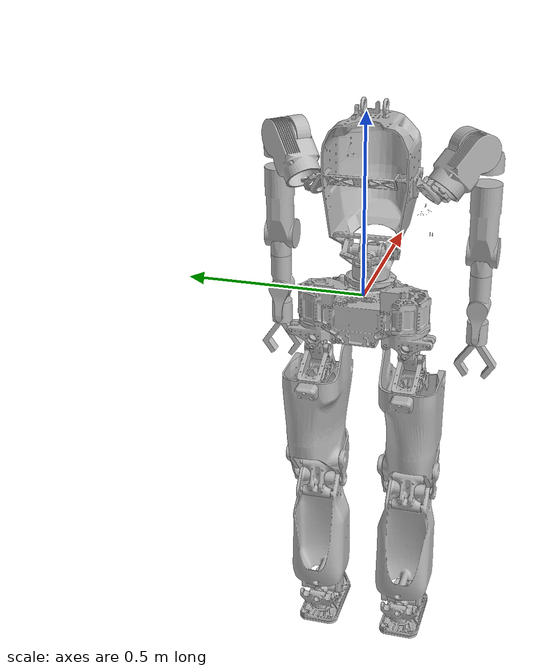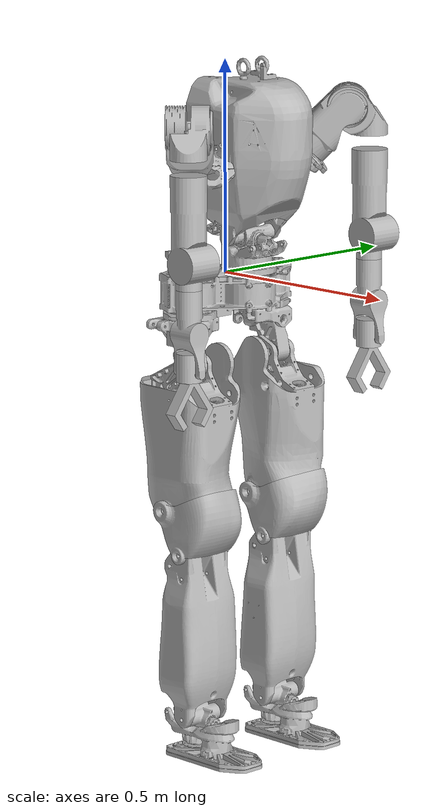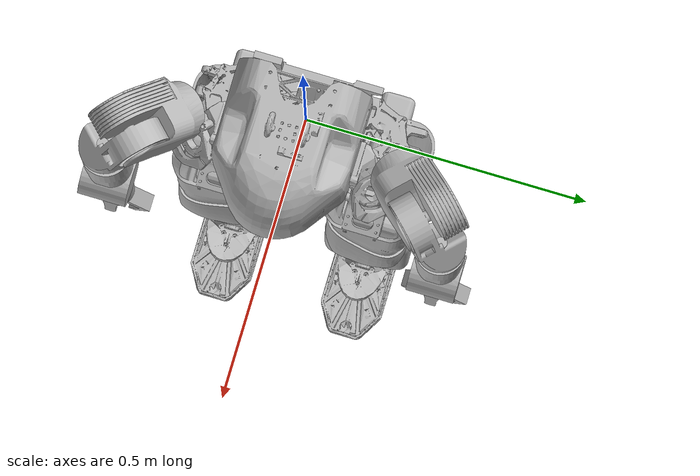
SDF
<sdf version='1.4'>
  <model name='nadia'>
    <link name='PELVIS_LINK'>
      <pose>0 0 0 0 -0 0</pose>
      <inertial>
        <pose>0.0207309 2.023e-05 -0.0309812 0 -0 0</pose>
        <mass>19.0917</mass>
        <inertia>
          <ixx>0.0942</ixx>
          <ixy>6.05e-06</ixy>
          <ixz>0.000379</ixz>
          <iyy>0.0416</iyy>
          <iyz>3.37e-07</iyz>
          <izz>0.112</izz>
        </inertia>
      </inertial>
	  <sensor name="pelvis_orientus_imu" type="imu">
      <pose>-0.00960080 -0.0000010 -0.07599977 0 0 3.141592</pose>
      <always_on>1</always_on>
        <imu>
          <noise>
            <type>gaussian</type>
            <rate>
              <mean>0</mean>
              <stddev>0.0002</stddev>
              <bias_mean>7.5e-06</bias_mean>
              <bias_stddev>8e-07</bias_stddev>
            </rate>
            <accel>
              <mean>0</mean>
              <stddev>0.017</stddev>
              <bias_mean>0.1</bias_mean>
              <bias_stddev>0.001</bias_stddev>
            </accel>
          </noise>
        </imu>
      <visualize>1</visualize>
      <topic>imu_sensor</topic>
    </sensor>

    <sensor name="pelvis_gable_imu" type="imu">
      <pose>0.04096090  -0.17557654 -0.00812384 1.5708 3.141592 0.3926991</pose>
      <always_on>1</always_on>
        <imu>
          <noise>
            <type>gaussian</type>
            <rate>
              <mean>0</mean>
              <stddev>0.0002</stddev>
              <bias_mean>7.5e-06</bias_mean>
              <bias_stddev>8e-07</bias_stddev>
            </rate>
            <accel>
              <mean>0</mean>
              <stddev>0.017</stddev>
              <bias_mean>0.1</bias_mean>
              <bias_stddev>0.001</bias_stddev>
            </accel>
          </noise>
        </imu>
      <visualize>1</visualize>
      <topic>imu_sensor</topic>
    </sensor>

      <sensor name="pelvis_stim_imu" type="imu">
      <pose>-0.03133646 0.02237500 -0.07000000 0.0 3.141592 0.0</pose>
      <always_on>1</always_on>
        <imu>
          <noise>
            <type>gaussian</type>
            <rate>
              <mean>0</mean>
              <stddev>0.0002</stddev>
              <bias_mean>7.5e-06</bias_mean>
              <bias_stddev>8e-07</bias_stddev>
            </rate>
            <accel>
              <mean>0</mean>
              <stddev>0.017</stddev>
              <bias_mean>0.1</bias_mean>
              <bias_stddev>0.001</bias_stddev>
            </accel>
          </noise>
        </imu>
      <visualize>1</visualize>
      <topic>imu_sensor</topic>
    </sensor>

      <visual name='PELVIS_LINK_visual'>
        <pose>0 0 0 0 -0 0</pose>
        <geometry>
          <mesh>
            <scale>1 1 1</scale>
            <uri>model://nadia_V16_description/meshes/pelvis.obj</uri>
          </mesh>
        </geometry>
      </visual>
      <velocity_decay>
        <linear>0</linear>
        <angular>0</angular>
      </velocity_decay>
    </link>
    <link name='LEFT_HIP_YAW_LINK'>
      <pose>0 0.115 -0.07185 0 -0 0</pose>
      <inertial>
        <pose>-0.00629727 0.00606893 -0.0397184 0 -0 0</pose>
        <mass>1.814</mass>
        <inertia>
          <ixx>0.00474191</ixx>
          <ixy>0.000527</ixy>
          <ixz>-0.000307</ixz>
          <iyy>0.00414</iyy>
          <iyz>1.36e-05</iyz>
          <izz>0.00569</izz>
        </inertia>
      </inertial>
      <visual name='LEFT_HIP_YAW_LINK_visual'>
        <pose>0 0 0 0 -0 0</pose>
        <geometry>
          <mesh>
            <scale>1 1 1</scale>
            <uri>model://nadia_V16_description/meshes/left_hip_yaw.obj</uri>
          </mesh>
        </geometry>
      </visual>
      <velocity_decay>
        <linear>0</linear>
        <angular>0</angular>
      </velocity_decay>
    </link>
    <joint name='LEFT_HIP_Z' type='revolute'>
      <child>LEFT_HIP_YAW_LINK</child>
      <parent>PELVIS_LINK</parent>
      <axis>
        <xyz>0 0 -1</xyz>
        <limit>
          <lower>-0.7854</lower>
          <upper>0.7854</upper>
          <effort>1000</effort>
          <velocity>100</velocity>
        </limit>
        <dynamics>
          <damping>0.05</damping>
        </dynamics>
      </axis>
    </joint>
    <link name='LEFT_HIP_ROLL_LINK'>
      <pose>0.035 0.13 -0.1216 0 -0 0</pose>
      <inertial>
        <pose>-0.0132704 0.00316985 -0.054 0 -0 0</pose>
        <mass>0.762</mass>
        <inertia>
          <ixx>0.00102899</ixx>
          <ixy>-9.31e-06</ixy>
          <ixz>0.000352</ixz>
          <iyy>0.00138</iyy>
          <iyz>3.22e-05</iyz>
          <izz>0.000663</izz>
        </inertia>
      </inertial>
      <visual name='LEFT_HIP_ROLL_LINK_visual'>
        <pose>0 0 0 0 -0 0</pose>
        <geometry>
          <mesh>
            <scale>1 1 1</scale>
            <uri>model://nadia_V16_description/meshes/left_hip_roll.obj</uri>
          </mesh>
        </geometry>
      </visual>
      <velocity_decay>
        <linear>0</linear>
        <angular>0</angular>
      </velocity_decay>
    </link>
    <joint name='LEFT_HIP_X' type='revolute'>
      <child>LEFT_HIP_ROLL_LINK</child>
      <parent>LEFT_HIP_YAW_LINK</parent>
      <axis>
        <xyz>1 0 0</xyz>
        <limit>
          <lower>-0.5236</lower>
          <upper>1.0472</upper>
          <effort>1000</effort>
          <velocity>100</velocity>
        </limit>
        <dynamics>
          <damping>0.05</damping>
        </dynamics>
      </axis>
    </joint>
    <link name='LEFT_THIGH_LINK'>
      <pose>0.035 0.13 -0.200668 0 -0 0</pose>
      <inertial>
        <pose>-0.00093749 0.0113451 -0.178631 0 -0 0</pose>
        <mass>10.953</mass>
        <inertia>
          <ixx>0.162227</ixx>
          <ixy>-0.000749</ixy>
          <ixz>0.0156</ixz>
          <iyy>0.174</iyy>
          <iyz>0.00213</iyz>
          <izz>0.0528</izz>
        </inertia>
      </inertial>
      <sensor name="left_thigh_imu" type="imu">
      <pose>0.05793744 0.01666131 -0.09511697 2.025  0.000 -1.571</pose>
      <always_on>1</always_on>
        <imu>
          <noise>
            <type>gaussian</type>
            <rate>
              <mean>0</mean>
              <stddev>0.0002</stddev>
              <bias_mean>7.5e-06</bias_mean>
              <bias_stddev>8e-07</bias_stddev>
            </rate>
            <accel>
              <mean>0</mean>
              <stddev>0.017</stddev>
              <bias_mean>0.1</bias_mean>
              <bias_stddev>0.001</bias_stddev>
            </accel>
          </noise>
        </imu>
      <visualize>1</visualize>
    </sensor>
      <visual name='LEFT_THIGH_LINK_visual'>
        <pose>0 0 0 0 -0 0</pose>
        <geometry>
          <mesh>
            <scale>1 1 1</scale>
            <uri>model://nadia_V16_description/meshes/left_thigh.obj</uri>
          </mesh>
        </geometry>
      </visual>
      <velocity_decay>
        <linear>0</linear>
        <angular>0</angular>
      </velocity_decay>
    </link>
    <joint name='LEFT_HIP_Y' type='revolute'>
      <child>LEFT_THIGH_LINK</child>
      <parent>LEFT_HIP_ROLL_LINK</parent>
      <axis>
        <xyz>0 1 0</xyz>
        <limit>
          <lower>-1.57</lower>
          <upper>0.314</upper>
          <effort>1000</effort>
          <velocity>100</velocity>
        </limit>
        <dynamics>
          <damping>0.05</damping>
        </dynamics>
      </axis>
    </joint>
    <link name='LEFT_KNEE_LINKAGE_LINK'>
      <pose>0.035 0.13 -0.580668 0 -0 0</pose>
      <inertial>
        <pose>0.00901763 0.00753613 -0.0436823 0 -0 0</pose>
        <mass>0.936</mass>
        <inertia>
          <ixx>0.00261734</ixx>
          <ixy>3.06e-07</ixy>
          <ixz>0.000313</ixz>
          <iyy>0.00159</iyy>
          <iyz>1.51e-06</iyz>
          <izz>0.00128</izz>
        </inertia>
      </inertial>
      <visual name='LEFT_KNEE_LINKAGE_LINK_visual'>
        <pose>0 0 0 0 -0 0</pose>
        <geometry>
          <mesh>
            <scale>1 1 1</scale>
            <uri>model://nadia_V16_description/meshes/left_knee_linkage.obj</uri>
          </mesh>
        </geometry>
      </visual>
      <velocity_decay>
        <linear>0</linear>
        <angular>0</angular>
      </velocity_decay>
    </link>
    <joint name='LEFT_KNEE_LINKAGE_UPPER_Y' type='revolute'>
      <child>LEFT_KNEE_LINKAGE_LINK</child>
      <parent>LEFT_THIGH_LINK</parent>
      <axis>
        <xyz>0 1 0</xyz>
        <limit>
          <lower>0</lower>
          <upper>2.6</upper>
          <effort>20</effort>
          <velocity>150</velocity>
        </limit>
        <dynamics>
          <damping>0.05</damping>
        </dynamics>
      </axis>
    </joint>
    <link name='LEFT_KNEE_SHELL_LINK'>
      <pose>0.0138691 0.13 -0.535353 0 -0 0</pose>
      <inertial>
        <pose>0.0248995 0.00826196 -0.0533022 0 -0 0</pose>
        <mass>1.101</mass>
        <inertia>
          <ixx>0.00642</ixx>
          <ixy>-3.64e-05</ixy>
          <ixz>1.43e-05</ixz>
          <iyy>0.00456</iyy>
          <iyz>-6.54e-05</iyz>
          <izz>0.00566</izz>
        </inertia>
      </inertial>
      <visual name='LEFT_KNEE_SHELL_LINK_visual'>
        <pose>0 0 0 0 -0 0</pose>
        <geometry>
          <mesh>
            <scale>1 1 1</scale>
            <uri>model://nadia_V16_description/meshes/left_knee_shell.obj</uri>
          </mesh>
        </geometry>
      </visual>
      <velocity_decay>
        <linear>0</linear>
        <angular>0</angular>
      </velocity_decay>
    </link>
    <joint name='LEFT_KNEE_SHELL_UPPER_Y' type='revolute'>
      <child>LEFT_KNEE_SHELL_LINK</child>
      <parent>LEFT_THIGH_LINK</parent>
      <axis>
        <xyz>0 1 0</xyz>
        <limit>
          <lower>0</lower>
          <upper>2.62</upper>
          <effort>1000</effort>
          <velocity>100</velocity>
        </limit>
        <dynamics>
          <damping>0.05</damping>
        </dynamics>
      </axis>
    </joint>
    <link name='LEFT_SHIN_LINK'>
      <pose>0.0561879 0.13 -0.636886 0 -0 0</pose>
      <inertial>
        <pose>-0.0184149 0.00228086 -0.220542 0 -0 0</pose>
        <mass>5.42</mass>
        <inertia>
          <ixx>0.0644378</ixx>
          <ixy>-0.000214</ixy>
          <ixz>-0.00538</ixz>
          <iyy>0.0583</iyy>
          <iyz>-0.000962</iyz>
          <izz>0.0136</izz>
        </inertia>
      </inertial>
      <sensor name="left_shin_imu" type="imu">
      <pose>-0.03216129 -0.07159184 -0.1864738 -1.570796 0.0 0.0</pose>
      <always_on>1</always_on>
        <imu>
          <noise>
            <type>gaussian</type>
            <rate>
              <mean>0</mean>
              <stddev>0.0002</stddev>
              <bias_mean>7.5e-06</bias_mean>
              <bias_stddev>8e-07</bias_stddev>
            </rate>
            <accel>
              <mean>0</mean>
              <stddev>0.017</stddev>
              <bias_mean>0.1</bias_mean>
              <bias_stddev>0.001</bias_stddev>
            </accel>
          </noise>
        </imu>
      <visualize>1</visualize>
    </sensor>
      <visual name='LEFT_SHIN_LINK_visual'>
        <pose>0 0 0 0 -0 0</pose>
        <geometry>
          <mesh>
            <scale>1 1 1</scale>
            <uri>model://nadia_V16_description/meshes/left_shin.obj</uri>
          </mesh>
        </geometry>
      </visual>
      <velocity_decay>
        <linear>0</linear>
        <angular>0</angular>
      </velocity_decay>
    </link>
    <joint name='LEFT_KNEE_SHELL_LOWER_Y' type='revolute'>
      <child>LEFT_SHIN_LINK</child>
      <parent>LEFT_KNEE_SHELL_LINK</parent>
      <axis>
        <xyz>0 1 0</xyz>
        <limit>
          <lower>0</lower>
          <upper>2.62</upper>
          <effort>1000</effort>
          <velocity>100</velocity>
        </limit>
        <dynamics>
          <damping>0.05</damping>
        </dynamics>
      </axis>
    </joint>
    <link name='LEFT_ANKLE_LINK'>
      <pose>0.0478857 0.13 -1.03903 0 -0 0</pose>
      <inertial>
        <pose>-0.00072338 -6.619e-05 -0.00399965 0 -0 0</pose>
        <mass>0.56</mass>
        <inertia>
          <ixx>0.000459</ixx>
          <ixy>2.65e-08</ixy>
          <ixz>-2.43e-06</ixz>
          <iyy>0.000336</iyy>
          <iyz>1.48e-07</iyz>
          <izz>0.000645</izz>
        </inertia>
      </inertial>
      <visual name='LEFT_ANKLE_LINK_visual'>
        <pose>0 0 0 0 -0 0</pose>
        <geometry>
          <mesh>
            <scale>1 1 1</scale>
            <uri>model://nadia_V16_description/meshes/ankle.obj</uri>
          </mesh>
        </geometry>
      </visual>
      <velocity_decay>
        <linear>0</linear>
        <angular>0</angular>
      </velocity_decay>
    </link>
    <joint name='LEFT_ANKLE_Y' type='revolute'>
      <child>LEFT_ANKLE_LINK</child>
      <parent>LEFT_SHIN_LINK</parent>
      <axis>
        <xyz>0 1 0</xyz>
        <limit>
          <lower>-1.0472</lower>
          <upper>0.698132</upper>
          <effort>1000</effort>
          <velocity>100</velocity>
        </limit>
        <dynamics>
          <damping>0.05</damping>
        </dynamics>
      </axis>
    </joint>
    <link name='LEFT_FOOT_LINK'>
      <pose>0.0478857 0.13 -1.04903 0 -0 0</pose>
      <inertial>
        <pose>0.03075449 0.00007807 -0.04382467 0 -0 0</pose>
        <mass>1.75</mass>
        <inertia>
          <ixx>0.00345011</ixx>
          <ixy>-0.0000073</ixy>
          <ixz>0.0014225</ixz>
          <iyy>0.00955764</iyy>
          <iyz>-2.269e-7</iyz>
          <izz>0.00881313</izz>
        </inertia>
      </inertial>
      <visual name='LEFT_FOOT_LINK_visual'>
        <pose>0 0 0 0 -0 0</pose>
        <geometry>
          <mesh>
            <scale>1 1 1</scale>
            <uri>model://nadia_V16_description/meshes/foot.obj</uri>
          </mesh>
        </geometry>
      </visual>
      <velocity_decay>
        <linear>0</linear>
        <angular>0</angular>
      </velocity_decay>
      <sensor name="left_foot_imu" type="imu">
      <pose>0.053 0.0 -0.063 0.0 0.0 1.57079</pose>
      <always_on>1</always_on>
        <imu>
          <noise>
            <type>gaussian</type>
            <rate>
              <mean>0</mean>
              <stddev>0.0002</stddev>
              <bias_mean>7.5e-06</bias_mean>
              <bias_stddev>8e-07</bias_stddev>
            </rate>
            <accel>
              <mean>0</mean>
              <stddev>0.017</stddev>
              <bias_mean>0.1</bias_mean>
              <bias_stddev>0.001</bias_stddev>
            </accel>
          </noise>
        </imu>
      <visualize>1</visualize>
      </sensor>
    </link>
    <joint name='LEFT_ANKLE_X' type='revolute'>
      <child>LEFT_FOOT_LINK</child>
      <parent>LEFT_ANKLE_LINK</parent>
      <axis>
        <xyz>1 0 0</xyz>
        <limit>
          <lower>-0.436332</lower>
          <upper>0.436332</upper>
          <effort>1000</effort>
          <velocity>100</velocity>
        </limit>
        <dynamics>
          <damping>0.05</damping>
        </dynamics>
      </axis>
    </joint>
    <link name='RIGHT_HIP_YAW_LINK'>
      <pose>0 -0.115 -0.07185 0 -0 0</pose>
      <inertial>
        <pose>-0.00629727 -0.00606893 -0.0397184 0 -0 0</pose>
        <mass>1.814</mass>
        <inertia>
          <ixx>0.00474191</ixx>
          <ixy>-0.000527</ixy>
          <ixz>-0.000307</ixz>
          <iyy>0.00414</iyy>
          <iyz>-1.36e-05</iyz>
          <izz>0.00569</izz>
        </inertia>
      </inertial>
      <visual name='RIGHT_HIP_YAW_LINK_visual'>
        <pose>0 0 0 0 -0 0</pose>
        <geometry>
          <mesh>
            <scale>1 1 1</scale>
            <uri>model://nadia_V16_description/meshes/right_hip_yaw.obj</uri>
          </mesh>
        </geometry>
      </visual>
      <velocity_decay>
        <linear>0</linear>
        <angular>0</angular>
      </velocity_decay>
    </link>
    <joint name='RIGHT_HIP_Z' type='revolute'>
      <child>RIGHT_HIP_YAW_LINK</child>
      <parent>PELVIS_LINK</parent>
      <axis>
        <xyz>0 0 -1</xyz>
        <limit>
          <lower>-0.7854</lower>
          <upper>0.7854</upper>
          <effort>1000</effort>
          <velocity>100</velocity>
        </limit>
        <dynamics>
          <damping>0.05</damping>
        </dynamics>
      </axis>
    </joint>
    <link name='RIGHT_HIP_ROLL_LINK'>
      <pose>0.035 -0.13 -0.1216 0 -0 0</pose>
      <inertial>
        <pose>-0.0132704 -0.00316985 -0.054 0 -0 0</pose>
        <mass>0.762</mass>
        <inertia>
          <ixx>0.00102899</ixx>
          <ixy>9.31e-06</ixy>
          <ixz>0.000352</ixz>
          <iyy>0.00138</iyy>
          <iyz>-3.22e-05</iyz>
          <izz>0.000663</izz>
        </inertia>
      </inertial>
      <visual name='RIGHT_HIP_ROLL_LINK_visual'>
        <pose>0 0 0 0 -0 0</pose>
        <geometry>
          <mesh>
            <scale>1 1 1</scale>
            <uri>model://nadia_V16_description/meshes/right_hip_roll.obj</uri>
          </mesh>
        </geometry>
      </visual>
      <velocity_decay>
        <linear>0</linear>
        <angular>0</angular>
      </velocity_decay>
    </link>
    <joint name='RIGHT_HIP_X' type='revolute'>
      <child>RIGHT_HIP_ROLL_LINK</child>
      <parent>RIGHT_HIP_YAW_LINK</parent>
      <axis>
        <xyz>1 0 0</xyz>
        <limit>
          <lower>-1.0472</lower>
          <upper>0.5236</upper>
          <effort>1000</effort>
          <velocity>100</velocity>
        </limit>
        <dynamics>
          <damping>0.05</damping>
        </dynamics>
      </axis>
    </joint>
    <link name='RIGHT_THIGH_LINK'>
      <pose>0.035 -0.13 -0.200668 0 -0 0</pose>
      <inertial>
        <pose>-0.00093749 -0.0113451 -0.178631 0 -0 0</pose>
        <mass>10.953</mass>
        <inertia>
          <ixx>0.162227</ixx>
          <ixy>0.000749</ixy>
          <ixz>0.0156</ixz>
          <iyy>0.174</iyy>
          <iyz>-0.00213</iyz>
          <izz>0.0528</izz>
        </inertia>
      </inertial>
      <sensor name="right_thigh_imu" type="imu">
      <pose>0.05793670 0.01066129 -0.09511742 2.025  0.000 -1.571</pose>
      <always_on>1</always_on>
        <imu>
          <noise>
            <type>gaussian</type>
            <rate>
              <mean>0</mean>
              <stddev>0.0002</stddev>
              <bias_mean>7.5e-06</bias_mean>
              <bias_stddev>8e-07</bias_stddev>
            </rate>
            <accel>
              <mean>0</mean>
              <stddev>0.017</stddev>
              <bias_mean>0.1</bias_mean>
              <bias_stddev>0.001</bias_stddev>
            </accel>
          </noise>
        </imu>
      <visualize>1</visualize>
    </sensor>
      <visual name='RIGHT_THIGH_LINK_visual'>
        <pose>0 0 0 0 -0 0</pose>
        <geometry>
          <mesh>
            <scale>1 1 1</scale>
            <uri>model://nadia_V16_description/meshes/right_thigh.obj</uri>
          </mesh>
        </geometry>
      </visual>
      <velocity_decay>
        <linear>0</linear>
        <angular>0</angular>
      </velocity_decay>
    </link>
    <joint name='RIGHT_HIP_Y' type='revolute'>
      <child>RIGHT_THIGH_LINK</child>
      <parent>RIGHT_HIP_ROLL_LINK</parent>
      <axis>
        <xyz>0 1 0</xyz>
        <limit>
          <lower>-1.57</lower>
          <upper>0.314</upper>
          <effort>1000</effort>
          <velocity>100</velocity>
        </limit>
        <dynamics>
          <damping>0.05</damping>
        </dynamics>
      </axis>
    </joint>
    <link name='RIGHT_KNEE_LINKAGE_LINK'>
      <pose>0.035 -0.13 -0.580668 0 -0 0</pose>
      <inertial>
        <pose>0.00901763 -0.00753613 -0.0436823 0 -0 0</pose>
        <mass>0.936</mass>
        <inertia>
          <ixx>0.00261734</ixx>
          <ixy>-3.06e-07</ixy>
          <ixz>0.000313</ixz>
          <iyy>0.00159</iyy>
          <iyz>-1.51e-06</iyz>
          <izz>0.00128</izz>
        </inertia>
      </inertial>
      <visual name='RIGHT_KNEE_LINKAGE_LINK_visual'>
        <pose>0 0 0 0 -0 0</pose>
        <geometry>
          <mesh>
            <scale>1 1 1</scale>
            <uri>model://nadia_V16_description/meshes/right_knee_linkage.obj</uri>
          </mesh>
        </geometry>
      </visual>
      <velocity_decay>
        <linear>0</linear>
        <angular>0</angular>
      </velocity_decay>
    </link>
    <joint name='RIGHT_KNEE_LINKAGE_UPPER_Y' type='revolute'>
      <child>RIGHT_KNEE_LINKAGE_LINK</child>
      <parent>RIGHT_THIGH_LINK</parent>
      <axis>
        <xyz>0 1 0</xyz>
        <limit>
          <lower>0</lower>
          <upper>2.62</upper>
          <effort>1000</effort>
          <velocity>100</velocity>
        </limit>
        <dynamics>
          <damping>0.05</damping>
        </dynamics>
      </axis>
    </joint>
    <link name='RIGHT_KNEE_SHELL_LINK'>
      <pose>0.0138691 -0.13 -0.535353 0 -0 0</pose>
      <inertial>
        <pose>0.0248995 -0.00826196 -0.0533022 0 -0 0</pose>
        <mass>1.101</mass>
        <inertia>
          <ixx>0.00642</ixx>
          <ixy>3.64e-05</ixy>
          <ixz>1.43e-05</ixz>
          <iyy>0.00456</iyy>
          <iyz>6.54e-05</iyz>
          <izz>0.00566</izz>
        </inertia>
      </inertial>
      <visual name='RIGHT_KNEE_SHELL_LINK_visual'>
        <pose>0 0 0 0 -0 0</pose>
        <geometry>
          <mesh>
            <scale>1 1 1</scale>
            <uri>model://nadia_V16_description/meshes/right_knee_shell.obj</uri>
          </mesh>
        </geometry>
      </visual>
      <velocity_decay>
        <linear>0</linear>
        <angular>0</angular>
      </velocity_decay>
    </link>
    <joint name='RIGHT_KNEE_SHELL_UPPER_Y' type='revolute'>
      <child>RIGHT_KNEE_SHELL_LINK</child>
      <parent>RIGHT_THIGH_LINK</parent>
      <axis>
        <xyz>0 1 0</xyz>
        <limit>
          <lower>0</lower>
          <upper>2.62</upper>
          <effort>1000</effort>
          <velocity>100</velocity>
        </limit>
        <dynamics>
          <damping>0.05</damping>
        </dynamics>
      </axis>
    </joint>
    <link name='RIGHT_SHIN_LINK'>
      <pose>0.0561879 -0.13 -0.636886 0 -0 0</pose>
      <inertial>
        <pose>-0.0183705 -0.00241134 -0.219913 0 -0 0</pose>
        <mass>5.42</mass>
        <inertia>
          <ixx>0.0644431</ixx>
          <ixy>0.000202</ixy>
          <ixz>-0.00539</ixz>
          <iyy>0.0583</iyy>
          <iyz>0.000906</iyz>
          <izz>0.0136</izz>
        </inertia>
      </inertial>
      <sensor name="right_shin_imu" type="imu">
      <pose>-0.002838710 0.07159142 -0.1864738 -1.570796 0.0 3.141592</pose>
      <always_on>1</always_on>
        <imu>
          <noise>
            <type>gaussian</type>
            <rate>
              <mean>0</mean>
              <stddev>0.0002</stddev>
              <bias_mean>7.5e-06</bias_mean>
              <bias_stddev>8e-07</bias_stddev>
            </rate>
            <accel>
              <mean>0</mean>
              <stddev>0.017</stddev>
              <bias_mean>0.1</bias_mean>
              <bias_stddev>0.001</bias_stddev>
            </accel>
          </noise>
        </imu>
      <visualize>1</visualize>
    </sensor>
      <visual name='RIGHT_SHIN_LINK_visual'>
        <pose>0 0 0 0 -0 0</pose>
        <geometry>
          <mesh>
            <scale>1 1 1</scale>
            <uri>model://nadia_V16_description/meshes/right_shin.obj</uri>
          </mesh>
        </geometry>
      </visual>
      <velocity_decay>
        <linear>0</linear>
        <angular>0</angular>
      </velocity_decay>
    </link>
    <joint name='RIGHT_KNEE_SHELL_LOWER_Y' type='revolute'>
      <child>RIGHT_SHIN_LINK</child>
      <parent>RIGHT_KNEE_SHELL_LINK</parent>
      <axis>
        <xyz>0 1 0</xyz>
        <limit>
          <lower>0</lower>
          <upper>2.62</upper>
          <effort>1000</effort>
          <velocity>100</velocity>
        </limit>
        <dynamics>
          <damping>0.05</damping>
        </dynamics>
      </axis>
    </joint>
    <link name='RIGHT_ANKLE_LINK'>
      <pose>0.0478857 -0.13 -1.03903 0 -0 0</pose>
      <inertial>
        <pose>-0.00072338 6.619e-05 -0.00399965 0 -0 0</pose>
        <mass>0.56</mass>
        <inertia>
          <ixx>0.000459</ixx>
          <ixy>-2.65e-08</ixy>
          <ixz>-2.43e-06</ixz>
          <iyy>0.000336</iyy>
          <iyz>-1.48e-07</iyz>
          <izz>0.000645</izz>
        </inertia>
      </inertial>
      <visual name='RIGHT_ANKLE_LINK_visual'>
        <pose>0 0 0 0 -0 0</pose>
        <geometry>
          <mesh>
            <scale>1 1 1</scale>
            <uri>model://nadia_V16_description/meshes/ankle.obj</uri>
          </mesh>
        </geometry>
      </visual>
      <velocity_decay>
        <linear>0</linear>
        <angular>0</angular>
      </velocity_decay>
    </link>
    <joint name='RIGHT_ANKLE_Y' type='revolute'>
      <child>RIGHT_ANKLE_LINK</child>
      <parent>RIGHT_SHIN_LINK</parent>
      <axis>
        <xyz>0 1 0</xyz>
        <limit>
          <lower>-1.0472</lower>
          <upper>0.698132</upper>
          <effort>1000</effort>
          <velocity>100</velocity>
        </limit>
        <dynamics>
          <damping>0.05</damping>
        </dynamics>
      </axis>
    </joint>
    <link name='RIGHT_FOOT_LINK'>
      <pose>0.0478857 -0.13 -1.04903 0 -0 0</pose>
      <inertial>
        <pose>0.032048 4e-06 -0.028422 0 -0 0</pose>
        <mass>1.75</mass>
        <inertia>
          <ixx>0.00261</ixx>
          <ixy>-3.59e-07</ixy>
          <ixz>0.00102</ixz>
          <iyy>0.011</iyy>
          <iyz>-2.99e-07</iyz>
          <izz>0.0121</izz>
        </inertia>
      </inertial>
      <visual name='RIGHT_FOOT_LINK_visual'>
        <pose>0 0 0 0 -0 0</pose>
        <geometry>
          <mesh>
            <scale>1 1 1</scale>
            <uri>model://nadia_V16_description/meshes/foot.obj</uri>
          </mesh>
        </geometry>
      </visual>
      <velocity_decay>
        <linear>0</linear>
        <angular>0</angular>
      </velocity_decay>
      <sensor name="right_foot_imu" type="imu">
      <pose>0.053 0.0 -0.063 0.0 0.0 1.57079</pose>
      <always_on>1</always_on>
        <imu>
          <noise>
            <type>gaussian</type>
            <rate>
              <mean>0</mean>
              <stddev>0.0002</stddev>
              <bias_mean>7.5e-06</bias_mean>
              <bias_stddev>8e-07</bias_stddev>
            </rate>
            <accel>
              <mean>0</mean>
              <stddev>0.017</stddev>
              <bias_mean>0.1</bias_mean>
              <bias_stddev>0.001</bias_stddev>
            </accel>
          </noise>
        </imu>
      <visualize>1</visualize>
      </sensor>
    </link>
    <joint name='RIGHT_ANKLE_X' type='revolute'>
      <child>RIGHT_FOOT_LINK</child>
      <parent>RIGHT_ANKLE_LINK</parent>
      <axis>
        <xyz>1 0 0</xyz>
        <limit>
          <lower>-0.436332</lower>
          <upper>0.436332</upper>
          <effort>1000</effort>
          <velocity>100</velocity>
        </limit>
        <dynamics>
          <damping>0.05</damping>
        </dynamics>
      </axis>
    </joint>
    <link name='SPINE_YAW_LINK'>
      <pose>0.08 0 0.00635 0 -0 0</pose>
      <inertial>
        <pose>-0.00853118 -2.697e-05 0.0379145 0 -0 0</pose>
        <mass>0.91</mass>
        <inertia>
          <ixx>0.00374289</ixx>
          <ixy>1.25498e-07</ixy>
          <ixz>0.000271325</ixz>
          <iyy>0.00403003</iyy>
          <iyz>-1.38016e-07</iyz>
          <izz>0.00621298</izz>
        </inertia>
      </inertial>
      <visual name='SPINE_YAW_LINK_visual'>
        <pose>0 0 0 0 -0 0</pose>
        <geometry>
          <mesh>
            <scale>1 1 1</scale>
            <uri>model://nadia_V16_description/meshes/spine_yaw.obj</uri>
          </mesh>
        </geometry>
      </visual>
      <velocity_decay>
        <linear>0</linear>
        <angular>0</angular>
      </velocity_decay>
    </link>
    <joint name='SPINE_Z' type='revolute'>
      <child>SPINE_YAW_LINK</child>
      <parent>PELVIS_LINK</parent>
      <axis>
        <xyz>0 0 1</xyz>
        <limit>
          <lower>-1.0472</lower>
          <upper>1.0472</upper>
          <effort>1000</effort>
          <velocity>100</velocity>
        </limit>
        <dynamics>
          <damping>0.05</damping>
        </dynamics>
      </axis>
    </joint>
    <link name='SPINE_ROLL_LINK'>
      <pose>0.08 0 0.0884 0 -0 0</pose>
      <inertial>
        <pose>-0.0190498 7e-08 0.0197924 0 -0 0</pose>
        <mass>0.44</mass>
        <inertia>
          <ixx>0.000373262</ixx>
          <ixy>-1.51442e-10</ixy>
          <ixz>-6.69067e-05</ixz>
          <iyy>0.000649978</iyy>
          <iyz>-1.27858e-10</iyz>
          <izz>0.000419409</izz>
        </inertia>
      </inertial>
      <visual name='SPINE_ROLL_LINK_visual'>
        <pose>0 0 0 0 -0 0</pose>
        <geometry>
          <mesh>
            <scale>1 1 1</scale>
            <uri>model://nadia_V16_description/meshes/spine_roll.obj</uri>
          </mesh>
        </geometry>
      </visual>
      <velocity_decay>
        <linear>0</linear>
        <angular>0</angular>
      </velocity_decay>
    </link>
    <joint name='SPINE_X' type='revolute'>
      <child>SPINE_ROLL_LINK</child>
      <parent>SPINE_YAW_LINK</parent>
      <axis>
        <xyz>1 0 0</xyz>
        <limit>
          <lower>-0.523599</lower>
          <upper>0.523599</upper>
          <effort>1000</effort>
          <velocity>100</velocity>
        </limit>
        <dynamics>
          <damping>0.05</damping>
        </dynamics>
      </axis>
    </joint>
    <link name='TORSO_LINK'>
      <pose>0.08 0 0.0984 0 -0 0</pose>
      <inertial>
        <pose>-0.0361387 -2.81e-06 0.259086 0 -0 0</pose>
        <mass>49.36</mass>
        <inertia>
          <ixx>1.719893</ixx>
          <ixy>0.00027077</ixy>
          <ixz>-0.0216539</ixz>
          <iyy>1.6262736</iyy>
          <iyz>0.00066927</iyz>
          <izz>1.2208137</izz>
        </inertia>
      </inertial>
      <visual name='TORSO_LINK_visual'>
        <pose>0 0 0 0 -0 0</pose>
        <geometry>
          <mesh>
            <scale>1 1 1</scale>
            <uri>model://nadia_V16_description/meshes/torso.obj</uri>
          </mesh>
        </geometry>
      </visual>
      <velocity_decay>
        <linear>0</linear>
        <angular>0</angular>
      </velocity_decay>
      <sensor name="torso_imu" type="imu">
      <pose>0.04529 -0.02427 0.33757 3.141592 0 0</pose>
      <always_on>1</always_on>
        <imu>
          <noise>
            <type>gaussian</type>
            <rate>
              <mean>0</mean>
              <stddev>0.0002</stddev>
              <bias_mean>7.5e-06</bias_mean>
              <bias_stddev>8e-07</bias_stddev>
            </rate>
            <accel>
              <mean>0</mean>
              <stddev>0.017</stddev>
              <bias_mean>0.1</bias_mean>
              <bias_stddev>0.001</bias_stddev>
            </accel>
          </noise>
        </imu>
      <visualize>1</visualize>
      <topic>imu_sensor</topic>
    </sensor>
    </link>
    <joint name='SPINE_Y' type='revolute'>
      <child>TORSO_LINK</child>
      <parent>SPINE_ROLL_LINK</parent>
      <axis>
        <xyz>0 1 0</xyz>
        <limit>
          <lower>-0.34</lower>
          <upper>0.98</upper>
          <effort>1000</effort>
          <velocity>100</velocity>
        </limit>
        <dynamics>
          <damping>0.05</damping>
        </dynamics>
      </axis>
    </joint>
    <link name='LEFT_SHOULDER_PITCH_LINK'>
      <pose frame=''>0.079 0.185 0.2814 0.785398 -0 -0.785398</pose>
      <inertial>
        <pose frame=''>-0.001596 0.073962 0.000471 0 -0 0</pose>
        <mass>3.8</mass>
        <inertia>
          <ixx>0.0267966</ixx>
          <ixy>0.00044638</ixy>
          <ixz>2.022e-05</ixz>
          <iyy>0.00630524</iyy>
          <iyz>-1.437e-05</iyz>
          <izz>0.027482</izz>
        </inertia>
      </inertial>
      <visual name='LEFT_SHOULDER_PITCH_LINK_visual'>
        <pose frame=''>0 0 0 0 -0 0</pose>
        <geometry>
          <mesh>
            <scale>1 1 1</scale>
            <uri>model://nadia_V16_description/meshes/cycloidal_arm/L_Shoulder_Pitch_Assy.obj</uri>
          </mesh>
        </geometry>
      </visual>
      <sensor name="LEFT_SHOULDER_PITCH_LINK_imu_sensor" type="imu">
        <pose>-0.014642 0.070126 -0.021371 -1.5708 0.0 0.0</pose>
        <always_on>1</always_on>
        <imu>
          <noise>
            <type>gaussian</type>
            <rate>
              <mean>0</mean>
              <stddev>0.0002</stddev>
              <bias_mean>7.5e-06</bias_mean>
              <bias_stddev>8e-07</bias_stddev>
            </rate>
            <accel>
              <mean>0</mean>
              <stddev>0.017</stddev>
              <bias_mean>0.1</bias_mean>
              <bias_stddev>0.001</bias_stddev>
            </accel>
          </noise>
        </imu>
        <visualize>1</visualize>
        <topic>imu_sensor</topic>
      </sensor>
    </link>
    <joint name='LEFT_SHOULDER_Y' type='revolute'>
      <child>LEFT_SHOULDER_PITCH_LINK</child>
      <parent>TORSO_LINK</parent>
      <axis>
        <xyz>0.5 0.5 0.707107</xyz>
        <limit>
          <lower>-1.5708</lower>
          <upper>1.5708</upper>
          <effort>1000</effort>
          <velocity>100</velocity>
        </limit>
        <dynamics>
          <damping>0.05</damping>
          <friction>0</friction>
          <spring_reference>0</spring_reference>
          <spring_stiffness>0</spring_stiffness>
        </dynamics>
        <use_parent_model_frame>1</use_parent_model_frame>
      </axis>
    </joint>
    <link name='LEFT_SHOULDER_ROLL_LINK'>
      <pose frame=''>0.149 0.255 0.380395 -0 0 -0.785398</pose>
      <inertial>
        <pose frame=''>0.003747 0.044242 -0.07662 0 -0 0</pose>
        <mass>2.15</mass>
        <inertia>
          <ixx>0.0042424</ixx>
          <ixy>0.0002389</ixy>
          <ixz>-0.00044604</ixz>
          <iyy>0.00376653</iyy>
          <iyz>0.00072138</iyz>
          <izz>0.00185337</izz>
        </inertia>
      </inertial>
      <visual name='LEFT_SHOULDER_ROLL_LINK_visual'>
        <pose frame=''>0 0 0 0 -0 0</pose>
        <geometry>
          <mesh>
            <scale>1 1 1</scale>
            <uri>model://nadia_V16_description/meshes/cycloidal_arm/L_Shoulder_Roll_Assy.obj</uri>
          </mesh>
        </geometry>
      </visual>
    </link>
    <joint name='LEFT_SHOULDER_X' type='revolute'>
      <child>LEFT_SHOULDER_ROLL_LINK</child>
      <parent>LEFT_SHOULDER_PITCH_LINK</parent>
      <axis>
        <xyz>0.707107 -0.707107 -0</xyz>
        <limit>
          <lower>-3.14159</lower>
          <upper>0.785398</upper>
          <effort>1000</effort>
          <velocity>100</velocity>
        </limit>
        <dynamics>
          <damping>0.05</damping>
          <friction>0</friction>
          <spring_reference>0</spring_reference>
          <spring_stiffness>0</spring_stiffness>
        </dynamics>
        <use_parent_model_frame>1</use_parent_model_frame>
      </axis>
    </joint>
    <link name='LEFT_SHOULDER_YAW_LINK'>
      <pose frame=''>0.184355 0.290355 0.380395 -0 0 -0</pose>
      <inertial>
        <pose frame=''>0.006462 0 -0.222706 0 -0 0</pose>
        <mass>1.6</mass>
        <inertia>
          <ixx>0.0108233</ixx>
          <ixy>0</ixy>
          <ixz>0.00081142</ixz>
          <iyy>0.0108206</iyy>
          <iyz>0</iyz>
          <izz>0.00167541</izz>
        </inertia>
      </inertial>
      <visual name='LEFT_SHOULDER_YAW_LINK_visual'>
        <pose frame=''>0 0 0 0 -0 0</pose>
        <geometry>
          <mesh>
            <scale>1 1 1</scale>
            <uri>model://nadia_V16_description/meshes/cycloidal_arm/L_Shoulder_Yaw_Assy.obj</uri>
          </mesh>
        </geometry>
      </visual>
      <sensor name="LEFT_SHOULDER_YAW_LINK_imu_sensor" type="imu">
        <pose>0.024481 0.014661 -0.148274 -1.5708 0.0 -1.5708</pose>
        <always_on>1</always_on>
        <imu>
          <noise>
            <type>gaussian</type>
            <rate>
              <mean>0</mean>
              <stddev>0.0002</stddev>
              <bias_mean>7.5e-06</bias_mean>
              <bias_stddev>8e-07</bias_stddev>
            </rate>
            <accel>
              <mean>0</mean>
              <stddev>0.017</stddev>
              <bias_mean>0.1</bias_mean>
              <bias_stddev>0.001</bias_stddev>
            </accel>
          </noise>
        </imu>
        <visualize>1</visualize>
        <topic>imu_sensor</topic>
      </sensor>
    </link>
    <joint name='LEFT_SHOULDER_Z' type='revolute'>
      <child>LEFT_SHOULDER_YAW_LINK</child>
      <parent>LEFT_SHOULDER_ROLL_LINK</parent>
      <axis>
        <xyz>0 0 1</xyz>
        <limit>
          <lower>-1.5708</lower>
          <upper>1.5708</upper>
          <effort>1000</effort>
          <velocity>100</velocity>
        </limit>
        <dynamics>
          <damping>0.05</damping>
          <friction>0</friction>
          <spring_reference>0</spring_reference>
          <spring_stiffness>0</spring_stiffness>
        </dynamics>
        <use_parent_model_frame>1</use_parent_model_frame>
      </axis>
    </joint>
    <link name='LEFT_ELBOW_PITCH_LINK'>
      <pose frame=''>0.199355 0.290355 0.080395 -0 0 -0</pose>
      <inertial>
        <pose frame=''>-0.019122 0 -0.046552 0 -0 0</pose>
        <mass>0.805</mass>
        <inertia>
          <ixx>6.033e-05</ixx>
          <ixy>0</ixy>
          <ixz>1.233e-05</ixz>
          <iyy>6.56e-05</iyy>
          <iyz>0</iyz>
          <izz>9.094e-05</izz>
        </inertia>
      </inertial>
      <visual name='LEFT_ELBOW_PITCH_LINK_visual'>
        <pose frame=''>0 0 0 0 -0 0</pose>
        <geometry>
          <mesh>
            <scale>1 1 1</scale>
            <uri>model://nadia_V16_description/meshes/cycloidal_arm/L_Elbow_Pitch_Assy.obj</uri>
          </mesh>
        </geometry>
      </visual>
    </link>
    <joint name='LEFT_ELBOW_Y' type='revolute'>
      <child>LEFT_ELBOW_PITCH_LINK</child>
      <parent>LEFT_SHOULDER_YAW_LINK</parent>
      <axis>
        <xyz>0 1 -0</xyz>
        <limit>
          <lower>-2.79253</lower>
          <upper>1.22173</upper>
          <effort>1000</effort>
          <velocity>100</velocity>
        </limit>
        <dynamics>
          <damping>0.05</damping>
          <friction>0</friction>
          <spring_reference>0</spring_reference>
          <spring_stiffness>0</spring_stiffness>
        </dynamics>
        <use_parent_model_frame>1</use_parent_model_frame>
      </axis>
    </joint>
    <link name='LEFT_WRIST_YAW1_LINK'>
      <pose frame=''>0.184355 0.290355 0.080395 -0 0 -0</pose>
      <inertial>
        <pose frame=''>0 0 -0.135656 0 -0 0</pose>
        <mass>0.51</mass>
        <inertia>
          <ixx>0.00328052</ixx>
          <ixy>0</ixy>
          <ixz>0</ixz>
          <iyy>0.00346722</iyy>
          <iyz>0</iyz>
          <izz>0.00082723</izz>
        </inertia>
      </inertial>
      <visual name='LEFT_WRIST_YAW1_LINK_visual'>
        <pose frame=''>0 0 0 0 -0 0</pose>
        <geometry>
          <mesh>
            <scale>1 1 1</scale>
            <uri>model://nadia_V16_description/meshes/cycloidal_arm/L_Forearm_Yaw_Assy.obj</uri>
          </mesh>
        </geometry>
      </visual>
      <sensor name="LEFT_WRIST_YAW_LINK_imu_sensor" type="imu">
        <pose>0.012871 -0.014642 -0.117926 3.14159 0.0 1.5708</pose>
        <always_on>1</always_on>
        <imu>
          <noise>
            <type>gaussian</type>
            <rate>
              <mean>0</mean>
              <stddev>0.0002</stddev>
              <bias_mean>7.5e-06</bias_mean>
              <bias_stddev>8e-07</bias_stddev>
            </rate>
            <accel>
              <mean>0</mean>
              <stddev>0.017</stddev>
              <bias_mean>0.1</bias_mean>
              <bias_stddev>0.001</bias_stddev>
            </accel>
          </noise>
        </imu>
        <visualize>1</visualize>
        <topic>imu_sensor</topic>
      </sensor>
    </link>
    <joint name='LEFT_WRIST_Z1' type='revolute'>
      <child>LEFT_WRIST_YAW1_LINK</child>
      <parent>LEFT_ELBOW_PITCH_LINK</parent>
      <axis>
        <xyz>0 0 1</xyz>
        <limit>
          <lower>-1.5708</lower>
          <upper>1.5708</upper>
          <effort>1000</effort>
          <velocity>100</velocity>
        </limit>
        <dynamics>
          <damping>0.05</damping>
          <friction>0</friction>
          <spring_reference>0</spring_reference>
          <spring_stiffness>0</spring_stiffness>
        </dynamics>
        <use_parent_model_frame>1</use_parent_model_frame>
      </axis>
    </joint>
    <link name='LEFT_WRIST_ROLL_LINK'>
      <pose frame=''>0.184355 0.290355 -0.169605 -0 0 -0</pose>
      <inertial>
        <pose frame=''>0 0 0.012482 0 -0 0</pose>
        <mass>1.01</mass>
        <inertia>
          <ixx>0.00037477</ixx>
          <ixy>0</ixy>
          <ixz>0</ixz>
          <iyy>0.00037554</iyy>
          <iyz>0</iyz>
          <izz>0.00029295</izz>
        </inertia>
      </inertial>
      <visual name='LEFT_WRIST_ROLL_LINK_visual'>
        <pose frame=''>0 0 0 0 -0 0</pose>
        <geometry>
          <mesh>
            <scale>1 1 1</scale>
            <uri>model://nadia_V16_description/meshes/cycloidal_arm/L_Wrist_Roll_Assy.obj</uri>
          </mesh>
        </geometry>
      </visual>
    </link>
    <joint name='LEFT_WRIST_X' type='revolute'>
      <child>LEFT_WRIST_ROLL_LINK</child>
      <parent>LEFT_WRIST_YAW1_LINK</parent>
      <axis>
        <xyz>1 -0 -0</xyz>
        <limit>
          <lower>-2.61799</lower>
          <upper>2.61799</upper>
          <effort>1000</effort>
          <velocity>100</velocity>
        </limit>
        <dynamics>
          <damping>0.05</damping>
          <friction>0</friction>
          <spring_reference>0</spring_reference>
          <spring_stiffness>0</spring_stiffness>
        </dynamics>
        <use_parent_model_frame>1</use_parent_model_frame>
      </axis>
    </joint>
    <link name='LEFT_WRIST_YAW2_LINK'>
      <pose frame=''>0.184355 0.290355 -0.184605 -0 0 -0</pose>
      <inertial>
        <pose frame=''>0 0 -0.057828 0 -0 0</pose>
        <mass>1.255</mass>
        <inertia>
          <ixx>0.00153396</ixx>
          <ixy>0</ixy>
          <ixz>0</ixz>
          <iyy>0.00072386</iyy>
          <iyz>0</iyz>
          <izz>0.0009226</izz>
        </inertia>
      </inertial>
      <visual name='LEFT_WRIST_YAW2_LINK_visual'>
        <pose frame=''>0 0 0 0 -0 0</pose>
        <geometry>
          <mesh>
            <scale>1 1 1</scale>
            <uri>model://nadia_V16_description/meshes/cycloidal_arm/L_Wrist_Yaw_Assy.obj</uri>
          </mesh>
        </geometry>
      </visual>
      <sensor name="LEFT_WRIST_PITCH_LINK_imu_sensor" type="imu">
        <pose>0.034975 0.021274 -0.028671 3.14159 1.22173 3.14159</pose>
        <always_on>1</always_on>
        <imu>
          <noise>
            <type>gaussian</type>
            <rate>
              <mean>0</mean>
              <stddev>0.0002</stddev>
              <bias_mean>7.5e-06</bias_mean>
              <bias_stddev>8e-07</bias_stddev>
            </rate>
            <accel>
              <mean>0</mean>
              <stddev>0.017</stddev>
              <bias_mean>0.1</bias_mean>
              <bias_stddev>0.001</bias_stddev>
            </accel>
          </noise>
        </imu>
        <visualize>1</visualize>
        <topic>imu_sensor</topic>
      </sensor>
    </link>
    <joint name='LEFT_WRIST_Z2' type='revolute'>
      <child>LEFT_WRIST_YAW2_LINK</child>
      <parent>LEFT_WRIST_ROLL_LINK</parent>
      <axis>
        <xyz>0 0 1</xyz>
        <limit>
          <lower>-3.14159</lower>
          <upper>0.785398</upper>
          <effort>1000</effort>
          <velocity>100</velocity>
        </limit>
        <dynamics>
          <damping>0.05</damping>
          <friction>0</friction>
          <spring_reference>0</spring_reference>
          <spring_stiffness>0</spring_stiffness>
        </dynamics>
        <use_parent_model_frame>1</use_parent_model_frame>
      </axis>
    </joint>
    <link name='RIGHT_SHOULDER_PITCH_LINK'>
      <pose frame=''>0.079 -0.185 0.2814 -0.785398 -0 0.785398</pose>
      <inertial>
        <pose frame=''>-0.001596 -0.073962 0.000471 0 -0 0</pose>
        <mass>3.8</mass>
        <inertia>
          <ixx>0.0267966</ixx>
          <ixy>-0.00044638</ixy>
          <ixz>2.022e-05</ixz>
          <iyy>0.00630524</iyy>
          <iyz>1.437e-05</iyz>
          <izz>0.027482</izz>
        </inertia>
      </inertial>
      <visual name='RIGHT_SHOULDER_PITCH_LINK_visual'>
        <pose frame=''>0 0 0 0 -0 0</pose>
        <geometry>
          <mesh>
            <scale>1 1 1</scale>
            <uri>model://nadia_V16_description/meshes/cycloidal_arm/R_Shoulder_Pitch_Assy.obj</uri>
          </mesh>
        </geometry>
      </visual>
      <sensor name="RIGHT_SHOULDER_PITCH_LINK_imu_sensor" type="imu">
        <pose>-0.014642 -0.070126 0.021371 1.5708 0.0 0.0</pose>
        <always_on>1</always_on>
        <imu>
          <noise>
            <type>gaussian</type>
            <rate>
              <mean>0</mean>
              <stddev>0.0002</stddev>
              <bias_mean>7.5e-06</bias_mean>
              <bias_stddev>8e-07</bias_stddev>
            </rate>
            <accel>
              <mean>0</mean>
              <stddev>0.017</stddev>
              <bias_mean>0.1</bias_mean>
              <bias_stddev>0.001</bias_stddev>
            </accel>
          </noise>
        </imu>
        <visualize>1</visualize>
        <topic>imu_sensor</topic>
      </sensor>
    </link>
    <joint name='RIGHT_SHOULDER_Y' type='revolute'>
      <child>RIGHT_SHOULDER_PITCH_LINK</child>
      <parent>TORSO_LINK</parent>
      <axis>
        <xyz>-0.5 0.5 -0.707107</xyz>
        <limit>
          <lower>-1.5708</lower>
          <upper>1.5708</upper>
          <effort>1000</effort>
          <velocity>100</velocity>
        </limit>
        <dynamics>
          <damping>0.05</damping>
          <friction>0</friction>
          <spring_reference>0</spring_reference>
          <spring_stiffness>0</spring_stiffness>
        </dynamics>
        <use_parent_model_frame>1</use_parent_model_frame>
      </axis>
    </joint>
    <link name='RIGHT_SHOULDER_ROLL_LINK'>
      <pose frame=''>0.149 -0.255 0.380395 0 0 0.785398</pose>
      <inertial>
        <pose frame=''>0.003747 -0.044242 -0.07662 0 -0 0</pose>
        <mass>2.15</mass>
        <inertia>
          <ixx>0.0042424</ixx>
          <ixy>-0.0002389</ixy>
          <ixz>-0.00044604</ixz>
          <iyy>0.00376653</iyy>
          <iyz>-0.00072138</iyz>
          <izz>0.00185337</izz>
        </inertia>
      </inertial>
      <visual name='RIGHT_SHOULDER_ROLL_LINK_visual'>
        <pose frame=''>0 0 0 0 -0 0</pose>
        <geometry>
          <mesh>
            <scale>1 1 1</scale>
            <uri>model://nadia_V16_description/meshes/cycloidal_arm/R_Shoulder_Roll_Assy.obj</uri>
          </mesh>
        </geometry>
      </visual>
    </link>
    <joint name='RIGHT_SHOULDER_X' type='revolute'>
      <child>RIGHT_SHOULDER_ROLL_LINK</child>
      <parent>RIGHT_SHOULDER_PITCH_LINK</parent>
      <axis>
        <xyz>0.707107 0.707107 -0</xyz>
        <limit>
          <lower>-3.14159</lower>
          <upper>0.785398</upper>
          <effort>1000</effort>
          <velocity>100</velocity>
        </limit>
        <dynamics>
          <damping>0.05</damping>
          <friction>0</friction>
          <spring_reference>0</spring_reference>
          <spring_stiffness>0</spring_stiffness>
        </dynamics>
        <use_parent_model_frame>1</use_parent_model_frame>
      </axis>
    </joint>
    <link name='RIGHT_SHOULDER_YAW_LINK'>
      <pose frame=''>0.184355 -0.290355 0.380395 0 0 0</pose>
      <inertial>
        <pose frame=''>0.006462 0 -0.222706 0 -0 0</pose>
        <mass>1.6</mass>
        <inertia>
          <ixx>0.0108233</ixx>
          <ixy>0</ixy>
          <ixz>0.00081142</ixz>
          <iyy>0.0108206</iyy>
          <iyz>0</iyz>
          <izz>0.00167541</izz>
        </inertia>
      </inertial>
      <visual name='RIGHT_SHOULDER_YAW_LINK_visual'>
        <pose frame=''>0 0 0 0 -0 0</pose>
        <geometry>
          <mesh>
            <scale>1 1 1</scale>
            <uri>model://nadia_V16_description/meshes/cycloidal_arm/R_Shoulder_Yaw_Assy.obj</uri>
          </mesh>
        </geometry>
      </visual>
      <sensor name="RIGHT_SHOULDER_YAW_LINK_imu_sensor" type="imu">
        <pose>0.024481 0.014661 -0.148274 -1.5708 0.0 -1.5708</pose>
        <always_on>1</always_on>
        <imu>
          <noise>
            <type>gaussian</type>
            <rate>
              <mean>0</mean>
              <stddev>0.0002</stddev>
              <bias_mean>7.5e-06</bias_mean>
              <bias_stddev>8e-07</bias_stddev>
            </rate>
            <accel>
              <mean>0</mean>
              <stddev>0.017</stddev>
              <bias_mean>0.1</bias_mean>
              <bias_stddev>0.001</bias_stddev>
            </accel>
          </noise>
        </imu>
        <visualize>1</visualize>
        <topic>imu_sensor</topic>
      </sensor>
    </link>
    <joint name='RIGHT_SHOULDER_Z' type='revolute'>
      <child>RIGHT_SHOULDER_YAW_LINK</child>
      <parent>RIGHT_SHOULDER_ROLL_LINK</parent>
      <axis>
        <xyz>0 -0 1</xyz>
        <limit>
          <lower>-1.5708</lower>
          <upper>1.5708</upper>
          <effort>1000</effort>
          <velocity>100</velocity>
        </limit>
        <dynamics>
          <damping>0.05</damping>
          <friction>0</friction>
          <spring_reference>0</spring_reference>
          <spring_stiffness>0</spring_stiffness>
        </dynamics>
        <use_parent_model_frame>1</use_parent_model_frame>
      </axis>
    </joint>
    <link name='RIGHT_ELBOW_PITCH_LINK'>
      <pose frame=''>0.199355 -0.290355 0.080395 0 0 0</pose>
      <inertial>
        <pose frame=''>-0.019122 0 -0.046552 0 -0 0</pose>
        <mass>0.805</mass>
        <inertia>
          <ixx>6.033e-05</ixx>
          <ixy>0</ixy>
          <ixz>1.233e-05</ixz>
          <iyy>6.56e-05</iyy>
          <iyz>0</iyz>
          <izz>9.094e-05</izz>
        </inertia>
      </inertial>
      <visual name='RIGHT_ELBOW_PITCH_LINK_visual'>
        <pose frame=''>0 0 0 0 -0 0</pose>
        <geometry>
          <mesh>
            <scale>1 1 1</scale>
            <uri>model://nadia_V16_description/meshes/cycloidal_arm/R_Elbow_Pitch_Assy.obj</uri>
          </mesh>
        </geometry>
      </visual>
    </link>
    <joint name='RIGHT_ELBOW_Y' type='revolute'>
      <child>RIGHT_ELBOW_PITCH_LINK</child>
      <parent>RIGHT_SHOULDER_YAW_LINK</parent>
      <axis>
        <xyz>-0 1 0</xyz>
        <limit>
          <lower>-2.79253</lower>
          <upper>1.22173</upper>
          <effort>1000</effort>
          <velocity>100</velocity>
        </limit>
        <dynamics>
          <damping>0.05</damping>
          <friction>0</friction>
          <spring_reference>0</spring_reference>
          <spring_stiffness>0</spring_stiffness>
        </dynamics>
        <use_parent_model_frame>1</use_parent_model_frame>
      </axis>
    </joint>
    <link name='RIGHT_WRIST_YAW1_LINK'>
      <pose frame=''>0.184355 -0.290355 0.080395 0 0 0</pose>
      <inertial>
        <pose frame=''>0 0 -0.135656 0 -0 0</pose>
        <mass>0.51</mass>
        <inertia>
          <ixx>0.00328052</ixx>
          <ixy>0</ixy>
          <ixz>0</ixz>
          <iyy>0.00346722</iyy>
          <iyz>0</iyz>
          <izz>0.00082723</izz>
        </inertia>
      </inertial>
      <visual name='RIGHT_WRIST_YAW1_LINK_visual'>
        <pose frame=''>0 0 0 0 -0 0</pose>
        <geometry>
          <mesh>
            <scale>1 1 1</scale>
            <uri>model://nadia_V16_description/meshes/cycloidal_arm/R_Forearm_Yaw_Assy.obj</uri>
          </mesh>
        </geometry>
      </visual>
      <sensor name="RIGHT_WRIST_YAW_LINK_imu_sensor" type="imu">
        <pose>0.012871 -0.014642 -0.117926 3.14159 0.0 1.5708</pose>
        <always_on>1</always_on>
        <imu>
          <noise>
            <type>gaussian</type>
            <rate>
              <mean>0</mean>
              <stddev>0.0002</stddev>
              <bias_mean>7.5e-06</bias_mean>
              <bias_stddev>8e-07</bias_stddev>
            </rate>
            <accel>
              <mean>0</mean>
              <stddev>0.017</stddev>
              <bias_mean>0.1</bias_mean>
              <bias_stddev>0.001</bias_stddev>
            </accel>
          </noise>
        </imu>
        <visualize>1</visualize>
        <topic>imu_sensor</topic>
      </sensor>
    </link>
    <joint name='RIGHT_WRIST_Z1' type='revolute'>
      <child>RIGHT_WRIST_YAW1_LINK</child>
      <parent>RIGHT_ELBOW_PITCH_LINK</parent>
      <axis>
        <xyz>0 -0 1</xyz>
        <limit>
          <lower>-1.5708</lower>
          <upper>1.5708</upper>
          <effort>1000</effort>
          <velocity>100</velocity>
        </limit>
        <dynamics>
          <damping>0.05</damping>
          <friction>0</friction>
          <spring_reference>0</spring_reference>
          <spring_stiffness>0</spring_stiffness>
        </dynamics>
        <use_parent_model_frame>1</use_parent_model_frame>
      </axis>
    </joint>
    <link name='RIGHT_WRIST_ROLL_LINK'>
      <pose frame=''>0.184355 -0.290355 -0.169605 0 0 0</pose>
      <inertial>
        <pose frame=''>0 0 0.012482 0 -0 0</pose>
        <mass>1.01</mass>
        <inertia>
          <ixx>0.00037477</ixx>
          <ixy>0</ixy>
          <ixz>0</ixz>
          <iyy>0.00037554</iyy>
          <iyz>0</iyz>
          <izz>0.00029295</izz>
        </inertia>
      </inertial>
      <visual name='RIGHT_WRIST_ROLL_LINK_visual'>
        <pose frame=''>0 0 0 0 -0 0</pose>
        <geometry>
          <mesh>
            <scale>1 1 1</scale>
            <uri>model://nadia_V16_description/meshes/cycloidal_arm/R_Wrist_Roll_Assy.obj</uri>
          </mesh>
        </geometry>
      </visual>
    </link>
    <joint name='RIGHT_WRIST_X' type='revolute'>
      <child>RIGHT_WRIST_ROLL_LINK</child>
      <parent>RIGHT_WRIST_YAW1_LINK</parent>
      <axis>
        <xyz>1 0 -0</xyz>
        <limit>
          <lower>-2.61799</lower>
          <upper>2.61799</upper>
          <effort>1000</effort>
          <velocity>100</velocity>
        </limit>
        <dynamics>
          <damping>0.05</damping>
          <friction>0</friction>
          <spring_reference>0</spring_reference>
          <spring_stiffness>0</spring_stiffness>
        </dynamics>
        <use_parent_model_frame>1</use_parent_model_frame>
      </axis>
    </joint>
    <link name='RIGHT_WRIST_YAW2_LINK'>
      <pose frame=''>0.184355 -0.290355 -0.184605 0 0 0</pose>
      <inertial>
        <pose frame=''>0 0 -0.057828 0 -0 0</pose>
        <mass>1.255</mass>
        <inertia>
          <ixx>0.00153396</ixx>
          <ixy>0</ixy>
          <ixz>0</ixz>
          <iyy>0.00072386</iyy>
          <iyz>0</iyz>
          <izz>0.0009226</izz>
        </inertia>
      </inertial>
      <visual name='RIGHT_WRIST_YAW2_LINK_visual'>
        <pose frame=''>0 0 0 0 -0 0</pose>
        <geometry>
          <mesh>
            <scale>1 1 1</scale>
            <uri>model://nadia_V16_description/meshes/cycloidal_arm/R_Wrist_Yaw_Assy.obj</uri>
          </mesh>
        </geometry>
      </visual>
      <sensor name="RIGHT_WRIST_PITCH_LINK_imu_sensor" type="imu">
        <pose>0.034975 0.021274 -0.028671 3.14159 1.22173 3.14159</pose>
        <always_on>1</always_on>
        <imu>
          <noise>
            <type>gaussian</type>
            <rate>
              <mean>0</mean>
              <stddev>0.0002</stddev>
              <bias_mean>7.5e-06</bias_mean>
              <bias_stddev>8e-07</bias_stddev>
            </rate>
            <accel>
              <mean>0</mean>
              <stddev>0.017</stddev>
              <bias_mean>0.1</bias_mean>
              <bias_stddev>0.001</bias_stddev>
            </accel>
          </noise>
        </imu>
        <visualize>1</visualize>
        <topic>imu_sensor</topic>
      </sensor>
    </link>
    <joint name='RIGHT_WRIST_Z2' type='revolute'>
      <child>RIGHT_WRIST_YAW2_LINK</child>
      <parent>RIGHT_WRIST_ROLL_LINK</parent>
      <axis>
        <xyz>-0 0 -1</xyz>
        <limit>
          <lower>-3.14159</lower>
          <upper>0.785398</upper>
          <effort>1000</effort>
          <velocity>100</velocity>
        </limit>
        <dynamics>
          <damping>0.05</damping>
          <friction>0</friction>
          <spring_reference>0</spring_reference>
          <spring_stiffness>0</spring_stiffness>
        </dynamics>
        <use_parent_model_frame>1</use_parent_model_frame>
      </axis>
    </joint>
  </model>
</sdf>
